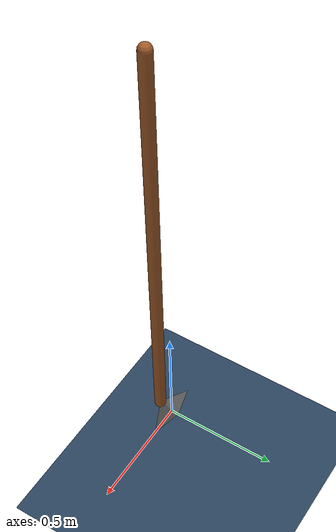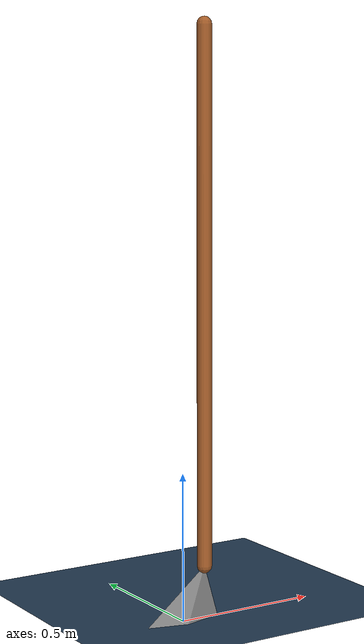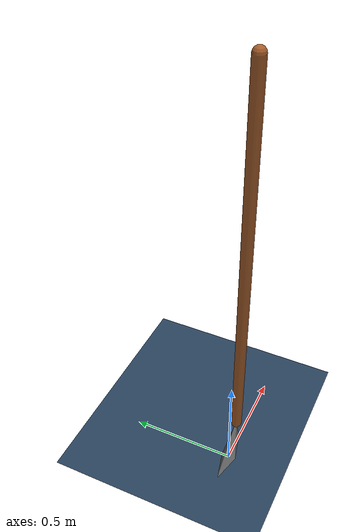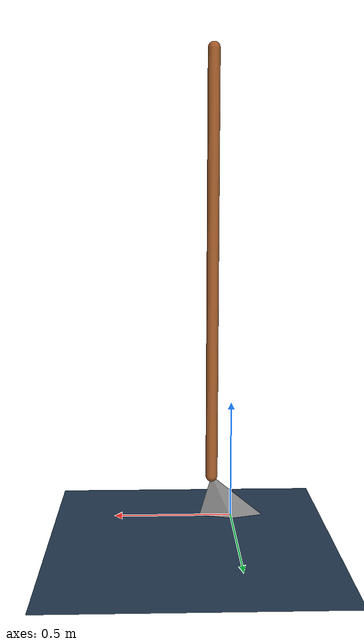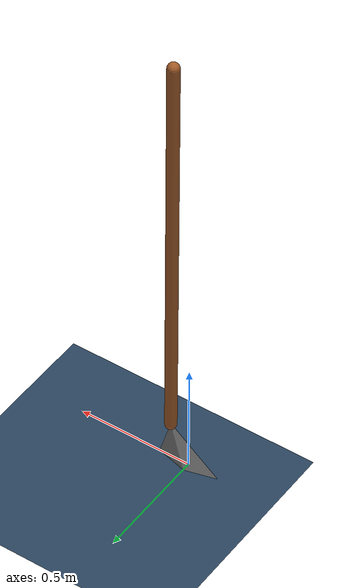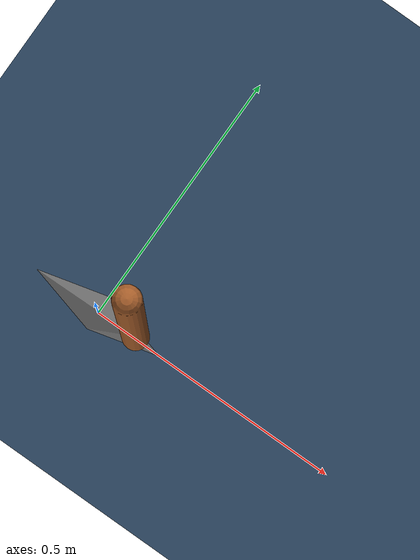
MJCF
<mujoco model="initial_humanoid">

  <option gravity="0 0 -9.81">

    <flag sensornoise="enable" />
  </option>

  <visual>
    <map zfar="30" />

    <rgba haze="0.15 0.25 0.35 1" />

  </visual>

  <statistic center="0 0 0.7" />

  <asset>
    <texture type="skybox" builtin="gradient" rgb1=".3 .5 .7" rgb2="0 0 0" width="32" height="512" />
    <texture name="body" type="cube" builtin="flat" mark="cross" width="128" height="128" rgb1="0.8 0.6 0.4" rgb2="0.8 0.6 0.4" markrgb="1 1 1" random="0.01" />
    <material name="body" texture="body" texuniform="true" rgba="0.8 0.6 .4 1" />
    <texture name="grid" type="2d" builtin="checker" width="512" height="512" rgb1=".1 .2 .3" rgb2=".2 .3 .4" />
    <material name="grid" texture="grid" texrepeat="1 1" texuniform="true" reflectance=".2" />
    <mesh name="foot_mesh" vertex="-0.13528 0 0  0.13528 0 0  0 -0.035 0  0 0.035 0  0.0838736 0 0.178" />
  </asset>

  <default>
    <motor ctrlrange="-1 1" ctrllimited="true" />
    <default class="body">

      <geom type="capsule" mass="10" condim="1" friction="0.7 0.005 0.0001" solimp=".9 .99 .003" solref=".015 1" material="body" group="1" />

      <default class="shin">
        <geom fromto="0 0 0.1 0 0 0" size="0.025" />
      </default>

    </default>
  </default>

	<worldbody>

      <geom name="ground" size="0 0 .05" type="plane" material="grid" condim="3" friction="0.99 0.99 0.99" solimp=".9 .99 .003" solref=".015 1" />

      <light name="spotlight" mode="targetbodycom" target="foot" diffuse=".8 .8 .8" specular="0.3 0.3 0.3" pos="0 -6 4" cutoff="30" />

        <body name="foot" pos="0 0 0">

          <joint name="rotation_dof" type="hinge" axis="0 -1 0" pos="-0.27056 0 0.035" />
          <joint type="slide" name="joint_slide_x" axis="-1 0 0" pos="0.13528 0 0.035" />
          <joint type="slide" name="joint_slide_z" axis="0 0 1" pos="0.13528 0 0.035" />

          <geom type="mesh" mesh="foot_mesh" name="foot_geom" />
          <body name="shin_body" pos="0.0838736 0 0.178">

            <joint type="hinge" name="ankle_hinge" axis="0 -1 0" pos="0 0 0" />
            <geom name="shin_geom" class="shin" fromto="0 0 1.78 0 0 0" mass="77.68" />

          </body>

        </body>

	</worldbody>

  <contact>

    <pair name="foot_ground_friction" geom1="foot_geom" geom2="ground" friction="0.5 0.5 0.99 0.99 0.99" />
  </contact>

	<actuator>
      <motor joint="ankle_hinge" name="shin_actuator" gear="170" />
      <motor joint="ankle_hinge" name="exo_ankle_actuator_y" gear="40" />
	</actuator>

	<sensor>
      <jointpos joint="ankle_hinge" />
	</sensor>

</mujoco>
